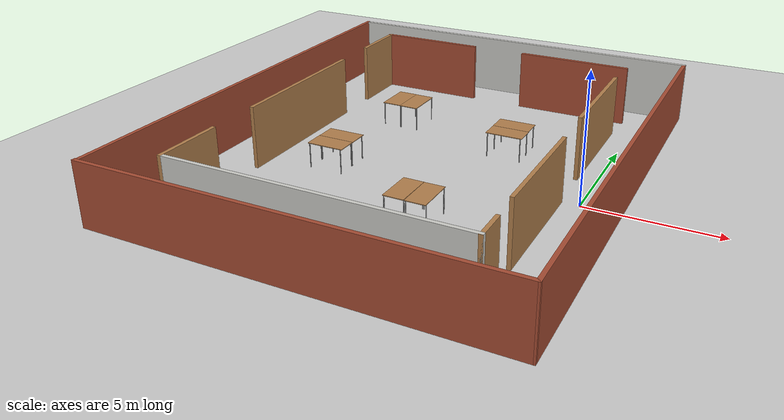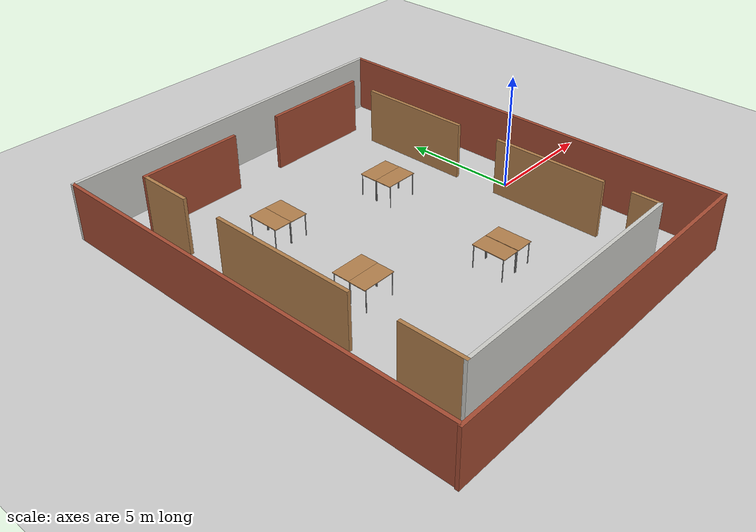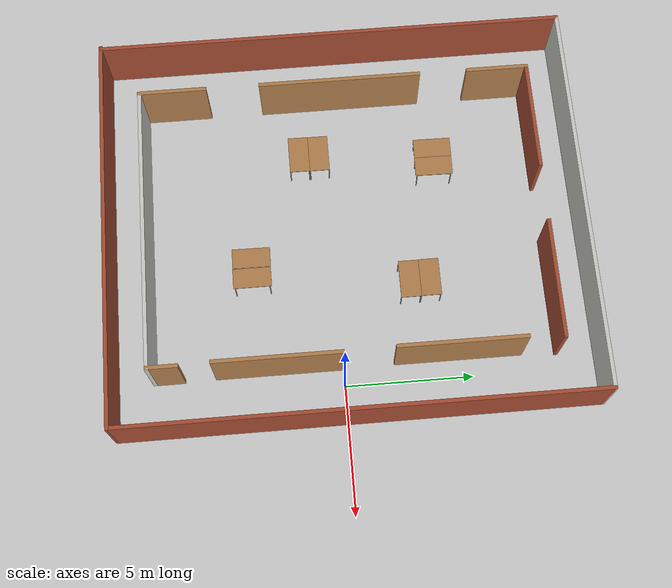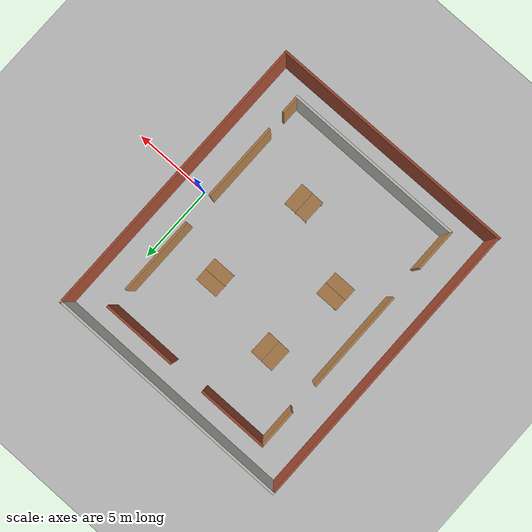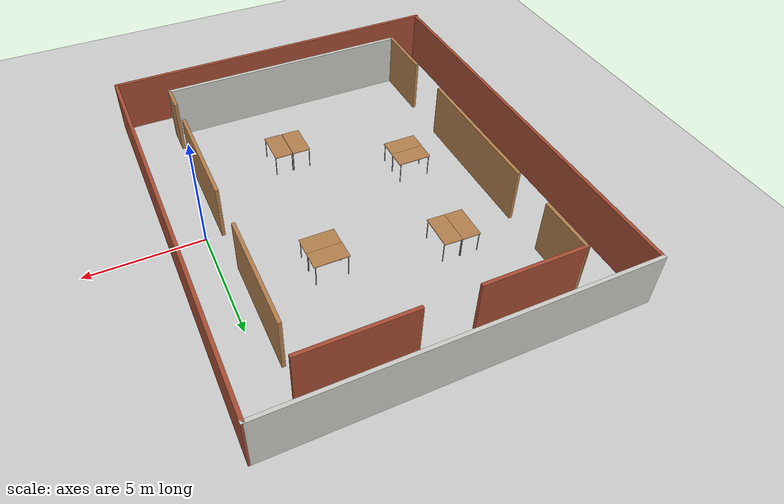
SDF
<sdf version="1.4">
 <world name="default">
  <model name="ground_plane">
   <static>1</static>
   <link name="link">
    <collision name="collision">
     <geometry><plane><normal>0 0 1</normal><size>100 100</size></plane></geometry>
     <surface><friction><ode><mu>100</mu><mu2>50</mu2></ode></friction></surface>
    </collision>
    <visual name="visual">
     <cast_shadows>0</cast_shadows>
     <geometry><plane><normal>0 0 1</normal><size>100 100</size></plane></geometry>
     <material>
      <script><uri>file://media/materials/scripts/gazebo.material</uri><name>Gazebo/Tertiary</name></script>
     </material>
    </visual>
   </link>
  </model>
  <light name="sun" type="directional">
   <pose>0 0 10 0 -0 0</pose>
   <diffuse>0.8 0.8 0.8 1</diffuse>
   <specular>0.2 0.2 0.2 1</specular>
   <attenuation>
    <range>1000</range>
    <constant>0.9</constant>
    <linear>0.01</linear>
    <quadratic>0.001</quadratic>
   </attenuation>
   <direction>-0.5 0.1 -0.9</direction>
  </light>
  <include><uri>model://open_hall3</uri><pose>-6.39 0.5 0.0 0 0 0</pose></include>
  <model name="table-01">
   <static>1</static>
   <link name="link">
    <collision name="surface">
     <pose>0 0 1 0 -0 0</pose>
     <geometry><box><size>1.5 0.8 0.03</size></box></geometry>
     <surface><friction><ode><mu>0.6</mu><mu2>0.6</mu2></ode></friction></surface>
    </collision>
    <visual name="visual1">
     <pose>0 0 1 0 -0 0</pose>
     <geometry><box><size>1.5 0.8 0.03</size></box></geometry>
     <material>
      <script><uri>file://media/materials/scripts/gazebo.material</uri><name>Gazebo/Wood</name></script>
     </material>
    </visual>
    <collision name="front_left_leg">
     <pose>0.68 0.38 0.5 0 -0 0</pose>
     <geometry><cylinder><radius>0.02</radius><length>1</length></cylinder></geometry>
    </collision>
    <visual name="front_left_leg">
     <pose>0.68 0.38 0.5 0 -0 0</pose>
     <geometry><cylinder><radius>0.02</radius><length>1</length></cylinder></geometry>
     <material>
      <script><uri>file://media/materials/scripts/gazebo.material</uri><name>Gazebo/Grey</name></script>
     </material>
    </visual>
    <collision name="front_right_leg">
     <pose>0.68 -0.38 0.5 0 -0 0</pose>
     <geometry><cylinder><radius>0.02</radius><length>1</length></cylinder></geometry>
    </collision>
    <visual name="front_right_leg">
     <pose>0.68 -0.38 0.5 0 -0 0</pose>
     <geometry><cylinder><radius>0.02</radius><length>1</length></cylinder></geometry>
     <material>
      <script><uri>file://media/materials/scripts/gazebo.material</uri><name>Gazebo/Grey</name></script>
     </material>
    </visual>
    <collision name="back_right_leg">
     <pose>-0.68 -0.38 0.5 0 -0 0</pose>
     <geometry><cylinder><radius>0.02</radius><length>1</length></cylinder></geometry>
    </collision>
    <visual name="back_right_leg">
     <pose>-0.68 -0.38 0.5 0 -0 0</pose>
     <geometry><cylinder><radius>0.02</radius><length>1</length></cylinder></geometry>
     <material>
      <script><uri>file://media/materials/scripts/gazebo.material</uri><name>Gazebo/Grey</name></script>
     </material>
    </visual>
    <collision name="back_left_leg">
     <pose>-0.68 0.38 0.5 0 -0 0</pose>
     <geometry><cylinder><radius>0.02</radius><length>1</length></cylinder></geometry>
    </collision>
    <visual name="back_left_leg">
     <pose>-0.68 0.38 0.5 0 -0 0</pose>
     <geometry><cylinder><radius>0.02</radius><length>1</length></cylinder></geometry>
     <material>
      <script><uri>file://media/materials/scripts/gazebo.material</uri><name>Gazebo/Grey</name></script>
     </material>
    </visual>
   </link>
   <pose>-5.22 -3.29 0 0 -0 1.56</pose>
  </model>
  <model name="table-02">
   <static>1</static>
   <link name="link">
    <collision name="surface">
     <pose>0 0 1 0 -0 0</pose>
     <geometry><box><size>1.5 0.8 0.03</size></box></geometry>
     <surface><friction><ode><mu>0.6</mu><mu2>0.6</mu2></ode></friction></surface>
    </collision>
    <visual name="visual1">
     <pose>0 0 1 0 -0 0</pose>
     <geometry><box><size>1.5 0.8 0.03</size></box></geometry>
     <material>
      <script><uri>file://media/materials/scripts/gazebo.material</uri><name>Gazebo/Wood</name></script>
     </material>
    </visual>
    <collision name="front_left_leg">
     <pose>0.68 0.38 0.5 0 -0 0</pose>
     <geometry><cylinder><radius>0.02</radius><length>1</length></cylinder></geometry>
    </collision>
    <visual name="front_left_leg">
     <pose>0.68 0.38 0.5 0 -0 0</pose>
     <geometry><cylinder><radius>0.02</radius><length>1</length></cylinder></geometry>
     <material>
      <script><uri>file://media/materials/scripts/gazebo.material</uri><name>Gazebo/Grey</name></script>
     </material>
    </visual>
    <collision name="front_right_leg">
     <pose>0.68 -0.38 0.5 0 -0 0</pose>
     <geometry><cylinder><radius>0.02</radius><length>1</length></cylinder></geometry>
    </collision>
    <visual name="front_right_leg">
     <pose>0.68 -0.38 0.5 0 -0 0</pose>
     <geometry><cylinder><radius>0.02</radius><length>1</length></cylinder></geometry>
     <material>
      <script><uri>file://media/materials/scripts/gazebo.material</uri><name>Gazebo/Grey</name></script>
     </material>
    </visual>
    <collision name="back_right_leg">
     <pose>-0.68 -0.38 0.5 0 -0 0</pose>
     <geometry><cylinder><radius>0.02</radius><length>1</length></cylinder></geometry>
    </collision>
    <visual name="back_right_leg">
     <pose>-0.68 -0.38 0.5 0 -0 0</pose>
     <geometry><cylinder><radius>0.02</radius><length>1</length></cylinder></geometry>
     <material>
      <script><uri>file://media/materials/scripts/gazebo.material</uri><name>Gazebo/Grey</name></script>
     </material>
    </visual>
    <collision name="back_left_leg">
     <pose>-0.68 0.38 0.5 0 -0 0</pose>
     <geometry><cylinder><radius>0.02</radius><length>1</length></cylinder></geometry>
    </collision>
    <visual name="back_left_leg">
     <pose>-0.68 0.38 0.5 0 -0 0</pose>
     <geometry><cylinder><radius>0.02</radius><length>1</length></cylinder></geometry>
     <material>
      <script><uri>file://media/materials/scripts/gazebo.material</uri><name>Gazebo/Grey</name></script>
     </material>
    </visual>
   </link>
   <pose>-4.40 -3.30 0 0 -0 -1.57</pose>
  </model>
  <model name="table-03">
   <static>1</static>
   <link name="link">
    <collision name="surface">
     <pose>0 0 1 0 -0 0</pose>
     <geometry><box><size>1.5 0.8 0.03</size></box></geometry>
     <surface><friction><ode><mu>0.6</mu><mu2>0.6</mu2></ode></friction></surface>
    </collision>
    <visual name="visual1">
     <pose>0 0 1 0 -0 0</pose>
     <geometry><box><size>1.5 0.8 0.03</size></box></geometry>
     <material>
      <script><uri>file://media/materials/scripts/gazebo.material</uri><name>Gazebo/Wood</name></script>
     </material>
    </visual>
    <collision name="front_left_leg">
     <pose>0.68 0.38 0.5 0 -0 0</pose>
     <geometry><cylinder><radius>0.02</radius><length>1</length></cylinder></geometry>
    </collision>
    <visual name="front_left_leg">
     <pose>0.68 0.38 0.5 0 -0 0</pose>
     <geometry><cylinder><radius>0.02</radius><length>1</length></cylinder></geometry>
     <material>
      <script><uri>file://media/materials/scripts/gazebo.material</uri><name>Gazebo/Grey</name></script>
     </material>
    </visual>
    <collision name="front_right_leg">
     <pose>0.68 -0.38 0.5 0 -0 0</pose>
     <geometry><cylinder><radius>0.02</radius><length>1</length></cylinder></geometry>
    </collision>
    <visual name="front_right_leg">
     <pose>0.68 -0.38 0.5 0 -0 0</pose>
     <geometry><cylinder><radius>0.02</radius><length>1</length></cylinder></geometry>
     <material>
      <script><uri>file://media/materials/scripts/gazebo.material</uri><name>Gazebo/Grey</name></script>
     </material>
    </visual>
    <collision name="back_right_leg">
     <pose>-0.68 -0.38 0.5 0 -0 0</pose>
     <geometry><cylinder><radius>0.02</radius><length>1</length></cylinder></geometry>
    </collision>
    <visual name="back_right_leg">
     <pose>-0.68 -0.38 0.5 0 -0 0</pose>
     <geometry><cylinder><radius>0.02</radius><length>1</length></cylinder></geometry>
     <material>
      <script><uri>file://media/materials/scripts/gazebo.material</uri><name>Gazebo/Grey</name></script>
     </material>
    </visual>
    <collision name="back_left_leg">
     <pose>-0.68 0.38 0.5 0 -0 0</pose>
     <geometry><cylinder><radius>0.02</radius><length>1</length></cylinder></geometry>
    </collision>
    <visual name="back_left_leg">
     <pose>-0.68 0.38 0.5 0 -0 0</pose>
     <geometry><cylinder><radius>0.02</radius><length>1</length></cylinder></geometry>
     <material>
      <script><uri>file://media/materials/scripts/gazebo.material</uri><name>Gazebo/Grey</name></script>
     </material>
    </visual>
   </link>
   <pose>-9.53 -1.12 0 0 -0 0</pose>
  </model>
  <model name="table-04">
   <static>1</static>
   <link name="link">
    <collision name="surface">
     <pose>0 0 1 0 -0 0</pose>
     <geometry><box><size>1.5 0.8 0.03</size></box></geometry>
     <surface><friction><ode><mu>0.6</mu><mu2>0.6</mu2></ode></friction></surface>
    </collision>
    <visual name="visual1">
     <pose>0 0 1 0 -0 0</pose>
     <geometry><box><size>1.5 0.8 0.03</size></box></geometry>
     <material>
      <script><uri>file://media/materials/scripts/gazebo.material</uri><name>Gazebo/Wood</name></script>
     </material>
    </visual>
    <collision name="front_left_leg">
     <pose>0.68 0.38 0.5 0 -0 0</pose>
     <geometry><cylinder><radius>0.02</radius><length>1</length></cylinder></geometry>
    </collision>
    <visual name="front_left_leg">
     <pose>0.68 0.38 0.5 0 -0 0</pose>
     <geometry><cylinder><radius>0.02</radius><length>1</length></cylinder></geometry>
     <material>
      <script><uri>file://media/materials/scripts/gazebo.material</uri><name>Gazebo/Grey</name></script>
     </material>
    </visual>
    <collision name="front_right_leg">
     <pose>0.68 -0.38 0.5 0 -0 0</pose>
     <geometry><cylinder><radius>0.02</radius><length>1</length></cylinder></geometry>
    </collision>
    <visual name="front_right_leg">
     <pose>0.68 -0.38 0.5 0 -0 0</pose>
     <geometry><cylinder><radius>0.02</radius><length>1</length></cylinder></geometry>
     <material>
      <script><uri>file://media/materials/scripts/gazebo.material</uri><name>Gazebo/Grey</name></script>
     </material>
    </visual>
    <collision name="back_right_leg">
     <pose>-0.68 -0.38 0.5 0 -0 0</pose>
     <geometry><cylinder><radius>0.02</radius><length>1</length></cylinder></geometry>
    </collision>
    <visual name="back_right_leg">
     <pose>-0.68 -0.38 0.5 0 -0 0</pose>
     <geometry><cylinder><radius>0.02</radius><length>1</length></cylinder></geometry>
     <material>
      <script><uri>file://media/materials/scripts/gazebo.material</uri><name>Gazebo/Grey</name></script>
     </material>
    </visual>
    <collision name="back_left_leg">
     <pose>-0.68 0.38 0.5 0 -0 0</pose>
     <geometry><cylinder><radius>0.02</radius><length>1</length></cylinder></geometry>
    </collision>
    <visual name="back_left_leg">
     <pose>-0.68 0.38 0.5 0 -0 0</pose>
     <geometry><cylinder><radius>0.02</radius><length>1</length></cylinder></geometry>
     <material>
      <script><uri>file://media/materials/scripts/gazebo.material</uri><name>Gazebo/Grey</name></script>
     </material>
    </visual>
   </link>
   <pose>-9.52 -0.32 0 0 -0 0</pose>
  </model>
  <model name="table-05">
   <static>1</static>
   <link name="link">
    <collision name="surface">
     <pose>0 0 1 0 -0 0</pose>
     <geometry><box><size>1.5 0.8 0.03</size></box></geometry>
     <surface><friction><ode><mu>0.6</mu><mu2>0.6</mu2></ode></friction></surface>
    </collision>
    <visual name="visual1">
     <pose>0 0 1 0 -0 0</pose>
     <geometry><box><size>1.5 0.8 0.03</size></box></geometry>
     <material>
      <script><uri>file://media/materials/scripts/gazebo.material</uri><name>Gazebo/Wood</name></script>
     </material>
    </visual>
    <collision name="front_left_leg">
     <pose>0.68 0.38 0.5 0 -0 0</pose>
     <geometry><cylinder><radius>0.02</radius><length>1</length></cylinder></geometry>
    </collision>
    <visual name="front_left_leg">
     <pose>0.68 0.38 0.5 0 -0 0</pose>
     <geometry><cylinder><radius>0.02</radius><length>1</length></cylinder></geometry>
     <material>
      <script><uri>file://media/materials/scripts/gazebo.material</uri><name>Gazebo/Grey</name></script>
     </material>
    </visual>
    <collision name="front_right_leg">
     <pose>0.68 -0.38 0.5 0 -0 0</pose>
     <geometry><cylinder><radius>0.02</radius><length>1</length></cylinder></geometry>
    </collision>
    <visual name="front_right_leg">
     <pose>0.68 -0.38 0.5 0 -0 0</pose>
     <geometry><cylinder><radius>0.02</radius><length>1</length></cylinder></geometry>
     <material>
      <script><uri>file://media/materials/scripts/gazebo.material</uri><name>Gazebo/Grey</name></script>
     </material>
    </visual>
    <collision name="back_right_leg">
     <pose>-0.68 -0.38 0.5 0 -0 0</pose>
     <geometry><cylinder><radius>0.02</radius><length>1</length></cylinder></geometry>
    </collision>
    <visual name="back_right_leg">
     <pose>-0.68 -0.38 0.5 0 -0 0</pose>
     <geometry><cylinder><radius>0.02</radius><length>1</length></cylinder></geometry>
     <material>
      <script><uri>file://media/materials/scripts/gazebo.material</uri><name>Gazebo/Grey</name></script>
     </material>
    </visual>
    <collision name="back_left_leg">
     <pose>-0.68 0.38 0.5 0 -0 0</pose>
     <geometry><cylinder><radius>0.02</radius><length>1</length></cylinder></geometry>
    </collision>
    <visual name="back_left_leg">
     <pose>-0.68 0.38 0.5 0 -0 0</pose>
     <geometry><cylinder><radius>0.02</radius><length>1</length></cylinder></geometry>
     <material>
      <script><uri>file://media/materials/scripts/gazebo.material</uri><name>Gazebo/Grey</name></script>
     </material>
    </visual>
   </link>
   <pose>-3.87 2.85 0 0 -0 0</pose>
  </model>
  <model name="table-06">
   <static>1</static>
   <link name="link">
    <collision name="surface">
     <pose>0 0 1 0 -0 0</pose>
     <geometry><box><size>1.5 0.8 0.03</size></box></geometry>
     <surface><friction><ode><mu>0.6</mu><mu2>0.6</mu2></ode></friction></surface>
    </collision>
    <visual name="visual1">
     <pose>0 0 1 0 -0 0</pose>
     <geometry><box><size>1.5 0.8 0.03</size></box></geometry>
     <material>
      <script><uri>file://media/materials/scripts/gazebo.material</uri><name>Gazebo/Wood</name></script>
     </material>
    </visual>
    <collision name="front_left_leg">
     <pose>0.68 0.38 0.5 0 -0 0</pose>
     <geometry><cylinder><radius>0.02</radius><length>1</length></cylinder></geometry>
    </collision>
    <visual name="front_left_leg">
     <pose>0.68 0.38 0.5 0 -0 0</pose>
     <geometry><cylinder><radius>0.02</radius><length>1</length></cylinder></geometry>
     <material>
      <script><uri>file://media/materials/scripts/gazebo.material</uri><name>Gazebo/Grey</name></script>
     </material>
    </visual>
    <collision name="front_right_leg">
     <pose>0.68 -0.38 0.5 0 -0 0</pose>
     <geometry><cylinder><radius>0.02</radius><length>1</length></cylinder></geometry>
    </collision>
    <visual name="front_right_leg">
     <pose>0.68 -0.38 0.5 0 -0 0</pose>
     <geometry><cylinder><radius>0.02</radius><length>1</length></cylinder></geometry>
     <material>
      <script><uri>file://media/materials/scripts/gazebo.material</uri><name>Gazebo/Grey</name></script>
     </material>
    </visual>
    <collision name="back_right_leg">
     <pose>-0.68 -0.38 0.5 0 -0 0</pose>
     <geometry><cylinder><radius>0.02</radius><length>1</length></cylinder></geometry>
    </collision>
    <visual name="back_right_leg">
     <pose>-0.68 -0.38 0.5 0 -0 0</pose>
     <geometry><cylinder><radius>0.02</radius><length>1</length></cylinder></geometry>
     <material>
      <script><uri>file://media/materials/scripts/gazebo.material</uri><name>Gazebo/Grey</name></script>
     </material>
    </visual>
    <collision name="back_left_leg">
     <pose>-0.68 0.38 0.5 0 -0 0</pose>
     <geometry><cylinder><radius>0.02</radius><length>1</length></cylinder></geometry>
    </collision>
    <visual name="back_left_leg">
     <pose>-0.68 0.38 0.5 0 -0 0</pose>
     <geometry><cylinder><radius>0.02</radius><length>1</length></cylinder></geometry>
     <material>
      <script><uri>file://media/materials/scripts/gazebo.material</uri><name>Gazebo/Grey</name></script>
     </material>
    </visual>
   </link>
   <pose>-3.88 3.64 0 0 -0 0</pose>
  </model>
  <model name="table-07">
   <static>1</static>
   <link name="link">
    <collision name="surface">
     <pose>0 0 1 0 -0 0</pose>
     <geometry><box><size>1.5 0.8 0.03</size></box></geometry>
     <surface><friction><ode><mu>0.6</mu><mu2>0.6</mu2></ode></friction></surface>
    </collision>
    <visual name="visual1">
     <pose>0 0 1 0 -0 0</pose>
     <geometry><box><size>1.5 0.8 0.03</size></box></geometry>
     <material>
      <script><uri>file://media/materials/scripts/gazebo.material</uri><name>Gazebo/Wood</name></script>
     </material>
    </visual>
    <collision name="front_left_leg">
     <pose>0.68 0.38 0.5 0 -0 0</pose>
     <geometry><cylinder><radius>0.02</radius><length>1</length></cylinder></geometry>
    </collision>
    <visual name="front_left_leg">
     <pose>0.68 0.38 0.5 0 -0 0</pose>
     <geometry><cylinder><radius>0.02</radius><length>1</length></cylinder></geometry>
     <material>
      <script><uri>file://media/materials/scripts/gazebo.material</uri><name>Gazebo/Grey</name></script>
     </material>
    </visual>
    <collision name="front_right_leg">
     <pose>0.68 -0.38 0.5 0 -0 0</pose>
     <geometry><cylinder><radius>0.02</radius><length>1</length></cylinder></geometry>
    </collision>
    <visual name="front_right_leg">
     <pose>0.68 -0.38 0.5 0 -0 0</pose>
     <geometry><cylinder><radius>0.02</radius><length>1</length></cylinder></geometry>
     <material>
      <script><uri>file://media/materials/scripts/gazebo.material</uri><name>Gazebo/Grey</name></script>
     </material>
    </visual>
    <collision name="back_right_leg">
     <pose>-0.68 -0.38 0.5 0 -0 0</pose>
     <geometry><cylinder><radius>0.02</radius><length>1</length></cylinder></geometry>
    </collision>
    <visual name="back_right_leg">
     <pose>-0.68 -0.38 0.5 0 -0 0</pose>
     <geometry><cylinder><radius>0.02</radius><length>1</length></cylinder></geometry>
     <material>
      <script><uri>file://media/materials/scripts/gazebo.material</uri><name>Gazebo/Grey</name></script>
     </material>
    </visual>
    <collision name="back_left_leg">
     <pose>-0.68 0.38 0.5 0 -0 0</pose>
     <geometry><cylinder><radius>0.02</radius><length>1</length></cylinder></geometry>
    </collision>
    <visual name="back_left_leg">
     <pose>-0.68 0.38 0.5 0 -0 0</pose>
     <geometry><cylinder><radius>0.02</radius><length>1</length></cylinder></geometry>
     <material>
      <script><uri>file://media/materials/scripts/gazebo.material</uri><name>Gazebo/Grey</name></script>
     </material>
    </visual>
   </link>
   <pose>-9.40 4.30 0 0 -0 -1.58</pose>
  </model>
  <model name="table-08">
   <static>1</static>
   <link name="link">
    <collision name="surface">
     <pose>0 0 1 0 -0 0</pose>
     <geometry><box><size>1.5 0.8 0.03</size></box></geometry>
     <surface><friction><ode><mu>0.6</mu><mu2>0.6</mu2></ode></friction></surface>
    </collision>
    <visual name="visual1">
     <pose>0 0 1 0 -0 0</pose>
     <geometry><box><size>1.5 0.8 0.03</size></box></geometry>
     <material>
      <script><uri>file://media/materials/scripts/gazebo.material</uri><name>Gazebo/Wood</name></script>
     </material>
    </visual>
    <collision name="front_left_leg">
     <pose>0.68 0.38 0.5 0 -0 0</pose>
     <geometry><cylinder><radius>0.02</radius><length>1</length></cylinder></geometry>
    </collision>
    <visual name="front_left_leg">
     <pose>0.68 0.38 0.5 0 -0 0</pose>
     <geometry><cylinder><radius>0.02</radius><length>1</length></cylinder></geometry>
     <material>
      <script><uri>file://media/materials/scripts/gazebo.material</uri><name>Gazebo/Grey</name></script>
     </material>
    </visual>
    <collision name="front_right_leg">
     <pose>0.68 -0.38 0.5 0 -0 0</pose>
     <geometry><cylinder><radius>0.02</radius><length>1</length></cylinder></geometry>
    </collision>
    <visual name="front_right_leg">
     <pose>0.68 -0.38 0.5 0 -0 0</pose>
     <geometry><cylinder><radius>0.02</radius><length>1</length></cylinder></geometry>
     <material>
      <script><uri>file://media/materials/scripts/gazebo.material</uri><name>Gazebo/Grey</name></script>
     </material>
    </visual>
    <collision name="back_right_leg">
     <pose>-0.68 -0.38 0.5 0 -0 0</pose>
     <geometry><cylinder><radius>0.02</radius><length>1</length></cylinder></geometry>
    </collision>
    <visual name="back_right_leg">
     <pose>-0.68 -0.38 0.5 0 -0 0</pose>
     <geometry><cylinder><radius>0.02</radius><length>1</length></cylinder></geometry>
     <material>
      <script><uri>file://media/materials/scripts/gazebo.material</uri><name>Gazebo/Grey</name></script>
     </material>
    </visual>
    <collision name="back_left_leg">
     <pose>-0.68 0.38 0.5 0 -0 0</pose>
     <geometry><cylinder><radius>0.02</radius><length>1</length></cylinder></geometry>
    </collision>
    <visual name="back_left_leg">
     <pose>-0.68 0.38 0.5 0 -0 0</pose>
     <geometry><cylinder><radius>0.02</radius><length>1</length></cylinder></geometry>
     <material>
      <script><uri>file://media/materials/scripts/gazebo.material</uri><name>Gazebo/Grey</name></script>
     </material>
    </visual>
   </link>
   <pose>-8.61 4.28 0 0 -0 -1.59</pose>
  </model>
 </world>
</sdf>
